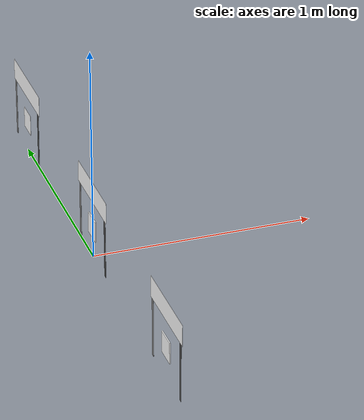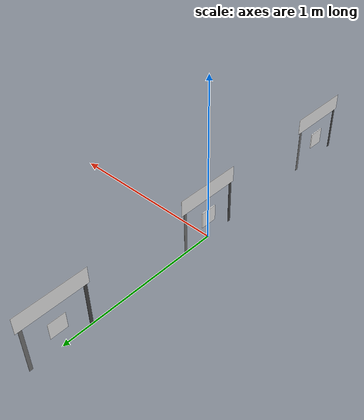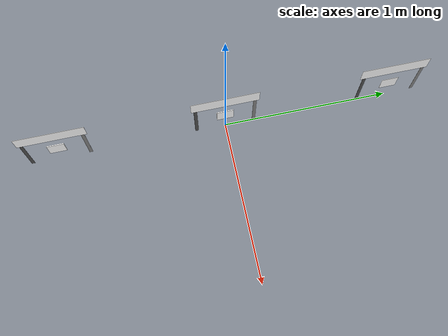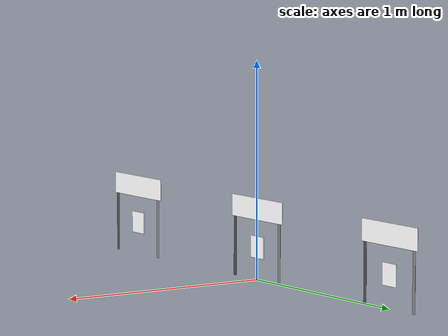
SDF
<?xml version="1.0" ?>
<sdf version="1.8">
  <model name="pickup_desk">
    <static>true</static>
    <link name="signboard_1">
      <pose>-0.0005 1 0.325 0 0 0</pose>
      <visual name="visual">
        <geometry>
          <box>
            <size>0.001 0.4 0.1</size>
          </box>
        </geometry>
        <material>
            <pbr>
              <metal>
                <albedo_map>model://turtlebot3_autorace_2025/pickup_desk/materials/textures/burger.png</albedo_map>
              </metal>
            </pbr>
          <ambient>1 1 1 1</ambient>
          <diffuse>1 1 1 1</diffuse>
        </material>
      </visual>

      <visual name="visual_left_bar_1">
        <pose>0 0.175 -0.1875 0 0 0</pose>
        <geometry>
          <box>
            <size>0.001 0.02 0.275</size>
          </box>
        </geometry>
        <material>
          <ambient>0.5 0.5 0.5 1</ambient>
          <diffuse>0.5 0.5 0.5 1</diffuse>
        </material>
      </visual>

      <visual name="visual_right_bar_1">
        <pose>0 -0.175 -0.1875 0 0 0</pose>
        <geometry>
          <box>
            <size>0.001 0.02 0.275</size>
          </box>
        </geometry>
        <material>
          <ambient>0.3 0.3 0.3 1</ambient>
          <diffuse>0.3 0.3 0.3 1</diffuse>
        </material>
      </visual>
    </link>

    <link name="QR_1">
      <pose>-0.0005 1 0.15 0 0 0</pose>
      <visual name="visual">
        <geometry>
          <box>
            <size>0.001 0.1 0.1</size>
          </box>
        </geometry>
        <material>
            <pbr>
              <metal>
                <albedo_map>model://turtlebot3_autorace_2025/pickup_desk/materials/textures/marker0.png</albedo_map>
              </metal>
            </pbr>
          <ambient>1 1 1 1</ambient>
          <diffuse>1 1 1 1</diffuse>
        </material>
      </visual>
    </link>

    <link name="signboard_2">
      <pose>-0.0005 0 0.325 0 0 0</pose>
      <visual name="visual">
        <geometry>
          <box>
            <size>0.001 0.4 0.1</size>
          </box>
        </geometry>
        <material>
            <pbr>
              <metal>
                <albedo_map>model://turtlebot3_autorace_2025/pickup_desk/materials/textures/pizza.png</albedo_map>
              </metal>
            </pbr>
          <ambient>1 1 1 1</ambient>
          <diffuse>1 1 1 1</diffuse>
        </material>
      </visual>

      <visual name="visual_left_bar_2">
        <pose>0 0.175 -0.1875 0 0 0</pose>
        <geometry>
          <box>
            <size>0.001 0.02 0.275</size>
          </box>
        </geometry>
        <material>
          <ambient>0.5 0.5 0.5 1</ambient>
          <diffuse>0.5 0.5 0.5 1</diffuse>
        </material>
      </visual>

      <visual name="visual_right_bar_2">
        <pose>0 -0.175 -0.1875 0 0 0</pose>
        <geometry>
          <box>
            <size>0.001 0.02 0.275</size>
          </box>
        </geometry>
        <material>
          <ambient>0.3 0.3 0.3 1</ambient>
          <diffuse>0.3 0.3 0.3 1</diffuse>
        </material>
      </visual>
    </link>

    <link name="QR_2">
      <pose>-0.0025 0 0.15 0 0 0</pose>
      <visual name="visual">
        <geometry>
          <box>
            <size>0.005 0.1 0.1</size>
          </box>
        </geometry>
        <material>
            <pbr>
              <metal>
                <albedo_map>model://turtlebot3_autorace_2025/pickup_desk/materials/textures/marker0.png</albedo_map>
              </metal>
            </pbr>
          <ambient>1 1 1 1</ambient>
          <diffuse>1 1 1 1</diffuse>
        </material>
      </visual>
    </link>

    <link name="signboard_3">
      <pose>-0.0005 -1 0.325 0 0 0</pose>
      <visual name="visual">
        <geometry>
          <box>
            <size>0.001 0.4 0.1</size>
          </box>
        </geometry>
        <material>
            <pbr>
              <metal>
                <albedo_map>model://turtlebot3_autorace_2025/pickup_desk/materials/textures/chicken.png</albedo_map>
              </metal>
            </pbr>
          <ambient>1 1 1 1</ambient>
          <diffuse>1 1 1 1</diffuse>
        </material>
      </visual>

      <visual name="visual_left_bar_3">
        <pose>0 0.175 -0.1875 0 0 0</pose>
        <geometry>
          <box>
            <size>0.001 0.02 0.275</size>
          </box>
        </geometry>
        <material>
          <ambient>0.5 0.5 0.5 1</ambient>
          <diffuse>0.5 0.5 0.5 1</diffuse>
        </material>
      </visual>

      <visual name="visual_right_bar_3">
        <pose>0 -0.175 -0.1875 0 0 0</pose>
        <geometry>
          <box>
            <size>0.001 0.02 0.275</size>
          </box>
        </geometry>
        <material>
          <ambient>0.3 0.3 0.3 1</ambient>
          <diffuse>0.3 0.3 0.3 1</diffuse>
        </material>
      </visual>
    </link>

    <link name="QR_3">
      <pose>-0.0025 -1 0.15 0 0 0</pose>
      <visual name="visual">
        <geometry>
          <box>
            <size>0.005 0.1 0.1</size>
          </box>
        </geometry>
        <material>
            <pbr>
              <metal>
                <albedo_map>model://turtlebot3_autorace_2025/pickup_desk/materials/textures/marker0.png</albedo_map>
              </metal>
            </pbr>
          <ambient>1 1 1 1</ambient>
          <diffuse>1 1 1 1</diffuse>
        </material>
      </visual>
    </link>
  </model>
</sdf>
